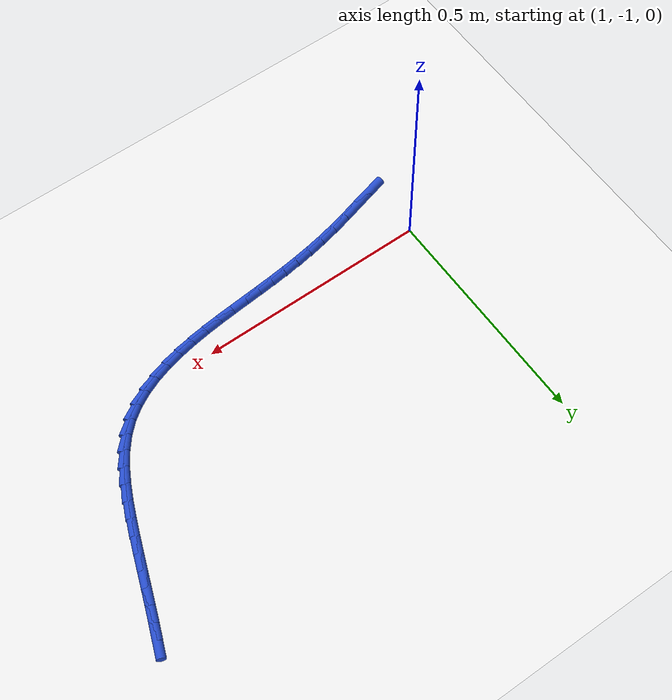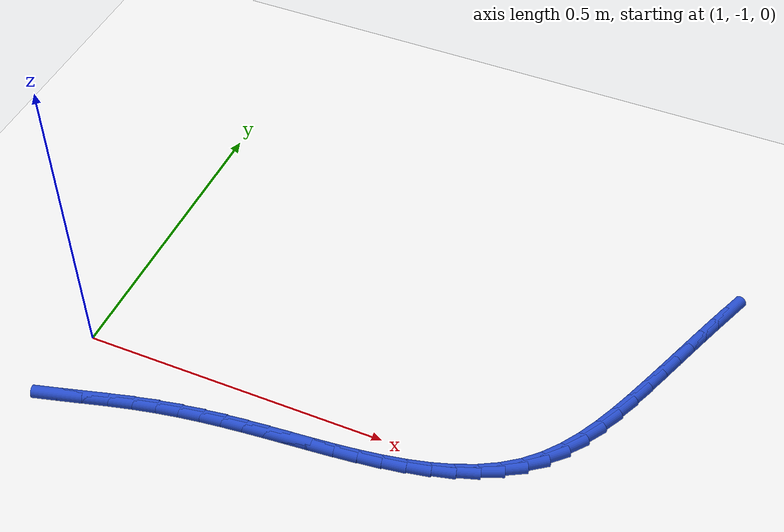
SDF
<sdf version="1.6">
 <world name="default">
  <model name="ground_plane">
   <static>1</static>
   <link name="link">
    <collision name="collision">
     <geometry><plane><normal>0 0 1</normal><size>100 100</size></plane></geometry>
     <surface><friction><ode><mu>100</mu><mu2>50</mu2></ode></friction></surface>
    </collision>
    <visual name="visual">
     <cast_shadows>0</cast_shadows>
     <geometry><plane><normal>0 0 1</normal><size>100 100</size></plane></geometry>
     <material>
      <script><uri>file://media/materials/scripts/gazebo.material</uri><name>Gazebo/WhiteGlow</name></script>
     </material>
    </visual>
   </link>
  </model>
  <model name="line">
   <link name="link_118">
    <pose>1.9072722049356385 -0.5615380536261032 0.01 0 1.57 1.1945652947559258</pose>
    <collision name="collision">
     <geometry><cylinder><radius>0.01</radius><length>0.08</length></cylinder></geometry>
    </collision>
    <visual name="visual">
     <material>
      <script><name>Gazebo/Blue</name><uri>file://media/materials/scripts/gazebo.material</uri></script>
     </material>
     <geometry><cylinder><radius>0.01</radius><length>0.08</length></cylinder></geometry>
    </visual>
   </link>
   <link name="link_119">
    <pose>1.8946620502462868 -0.5934585331819802 0.01 0 1.57 1.2041527923929434</pose>
    <collision name="collision">
     <geometry><cylinder><radius>0.01</radius><length>0.08</length></cylinder></geometry>
    </collision>
    <visual name="visual">
     <material>
      <script><name>Gazebo/Blue</name><uri>file://media/materials/scripts/gazebo.material</uri></script>
     </material>
     <geometry><cylinder><radius>0.01</radius><length>0.08</length></cylinder></geometry>
    </visual>
   </link>
   <link name="link_120">
    <pose>1.8823693876427026 -0.6254701116233897 0.01 0 1.57 1.209949274886723</pose>
    <collision name="collision">
     <geometry><cylinder><radius>0.01</radius><length>0.08</length></cylinder></geometry>
    </collision>
    <visual name="visual">
     <material>
      <script><name>Gazebo/Blue</name><uri>file://media/materials/scripts/gazebo.material</uri></script>
     </material>
     <geometry><cylinder><radius>0.01</radius><length>0.08</length></cylinder></geometry>
    </visual>
   </link>
   <link name="link_121">
    <pose>1.8702314227952408 -0.6576347185459426 0.01 0 1.57 1.2119248141530399</pose>
    <collision name="collision">
     <geometry><cylinder><radius>0.01</radius><length>0.08</length></cylinder></geometry>
    </collision>
    <visual name="visual">
     <material>
      <script><name>Gazebo/Blue</name><uri>file://media/materials/scripts/gazebo.material</uri></script>
     </material>
     <geometry><cylinder><radius>0.01</radius><length>0.08</length></cylinder></geometry>
    </visual>
   </link>
   <link name="link_122">
    <pose>1.858085361374259 -0.6900142835452499 0.01 0 1.57 1.2101267457551288</pose>
    <collision name="collision">
     <geometry><cylinder><radius>0.01</radius><length>0.08</length></cylinder></geometry>
    </collision>
    <visual name="visual">
     <material>
      <script><name>Gazebo/Blue</name><uri>file://media/materials/scripts/gazebo.material</uri></script>
     </material>
     <geometry><cylinder><radius>0.01</radius><length>0.08</length></cylinder></geometry>
    </visual>
   </link>
   <link name="link_123">
    <pose>1.845768409050113 -0.7226707362169221 0.01 0 1.57 1.204675052923725</pose>
    <collision name="collision">
     <geometry><cylinder><radius>0.01</radius><length>0.08</length></cylinder></geometry>
    </collision>
    <visual name="visual">
     <material>
      <script><name>Gazebo/Blue</name><uri>file://media/materials/scripts/gazebo.material</uri></script>
     </material>
     <geometry><cylinder><radius>0.01</radius><length>0.08</length></cylinder></geometry>
    </visual>
   </link>
   <link name="link_124">
    <pose>1.8331177714931597 -0.7556660061565704 0.01 0 1.57 1.1948804701572977</pose>
    <collision name="collision">
     <geometry><cylinder><radius>0.01</radius><length>0.08</length></cylinder></geometry>
    </collision>
    <visual name="visual">
     <material>
      <script><name>Gazebo/Blue</name><uri>file://media/materials/scripts/gazebo.material</uri></script>
     </material>
     <geometry><cylinder><radius>0.01</radius><length>0.08</length></cylinder></geometry>
    </visual>
   </link>
   <link name="link_125">
    <pose>1.8199553004847773 -0.7890153363406012 0.01 0 1.57 1.1728858050277255</pose>
    <collision name="collision">
     <geometry><cylinder><radius>0.01</radius><length>0.08</length></cylinder></geometry>
    </collision>
    <visual name="visual">
     <material>
      <script><name>Gazebo/Blue</name><uri>file://media/materials/scripts/gazebo.material</uri></script>
     </material>
     <geometry><cylinder><radius>0.01</radius><length>0.08</length></cylinder></geometry>
    </visual>
   </link>
   <link name="link_126">
    <pose>1.8059621249062885 -0.8223060731742263 0.01 0 1.57 1.133922118287796</pose>
    <collision name="collision">
     <geometry><cylinder><radius>0.01</radius><length>0.08</length></cylinder></geometry>
    </collision>
    <visual name="visual">
     <material>
      <script><name>Gazebo/Blue</name><uri>file://media/materials/scripts/gazebo.material</uri></script>
     </material>
     <geometry><cylinder><radius>0.01</radius><length>0.08</length></cylinder></geometry>
    </visual>
   </link>
   <link name="link_127">
    <pose>1.790743798267574 -0.8548957607895823 0.01 0 1.57 1.076483699218256</pose>
    <collision name="collision">
     <geometry><cylinder><radius>0.01</radius><length>0.08</length></cylinder></geometry>
    </collision>
    <visual name="visual">
     <material>
      <script><name>Gazebo/Blue</name><uri>file://media/materials/scripts/gazebo.material</uri></script>
     </material>
     <geometry><cylinder><radius>0.01</radius><length>0.08</length></cylinder></geometry>
    </visual>
   </link>
   <link name="link_128">
    <pose>1.7739051501890448 -0.8861397421857777 0.01 0 1.57 0.998292841311511</pose>
    <collision name="collision">
     <geometry><cylinder><radius>0.01</radius><length>0.08</length></cylinder></geometry>
    </collision>
    <visual name="visual">
     <material>
      <script><name>Gazebo/Blue</name><uri>file://media/materials/scripts/gazebo.material</uri></script>
     </material>
     <geometry><cylinder><radius>0.01</radius><length>0.08</length></cylinder></geometry>
    </visual>
   </link>
   <link name="link_129">
    <pose>1.7550510102911079 -0.9153933603619204 0.01 0 1.57 0.8967447258366091</pose>
    <collision name="collision">
     <geometry><cylinder><radius>0.01</radius><length>0.08</length></cylinder></geometry>
    </collision>
    <visual name="visual">
     <material>
      <script><name>Gazebo/Blue</name><uri>file://media/materials/scripts/gazebo.material</uri></script>
     </material>
     <geometry><cylinder><radius>0.01</radius><length>0.08</length></cylinder></geometry>
    </visual>
   </link>
   <link name="link_130">
    <pose>1.7337862081941735 -0.942011958317119 0.01 0 1.57 0.7700958047525768</pose>
    <collision name="collision">
     <geometry><cylinder><radius>0.01</radius><length>0.08</length></cylinder></geometry>
    </collision>
    <visual name="visual">
     <material>
      <script><name>Gazebo/Blue</name><uri>file://media/materials/scripts/gazebo.material</uri></script>
     </material>
     <geometry><cylinder><radius>0.01</radius><length>0.08</length></cylinder></geometry>
    </visual>
   </link>
   <link name="link_131">
    <pose>1.7097183057364775 -0.9653543153480236 0.01 0 1.57 0.6317520037540836</pose>
    <collision name="collision">
     <geometry><cylinder><radius>0.01</radius><length>0.08</length></cylinder></geometry>
    </collision>
    <visual name="visual">
     <material>
      <script><name>Gazebo/Blue</name><uri>file://media/materials/scripts/gazebo.material</uri></script>
     </material>
     <geometry><cylinder><radius>0.01</radius><length>0.08</length></cylinder></geometry>
    </visual>
   </link>
   <link name="link_132">
    <pose>1.6827195210678725 -0.9851120677527586 0.01 0 1.57 0.5081305437938447</pose>
    <collision name="collision">
     <geometry><cylinder><radius>0.01</radius><length>0.08</length></cylinder></geometry>
    </collision>
    <visual name="visual">
     <material>
      <script><name>Gazebo/Blue</name><uri>file://media/materials/scripts/gazebo.material</uri></script>
     </material>
     <geometry><cylinder><radius>0.01</radius><length>0.08</length></cylinder></geometry>
    </visual>
   </link>
   <link name="link_133">
    <pose>1.6531439501516036 -1.0015829072945959 0.01 0 1.57 0.4032943228519852</pose>
    <collision name="collision">
     <geometry><cylinder><radius>0.01</radius><length>0.08</length></cylinder></geometry>
    </collision>
    <visual name="visual">
     <material>
      <script><name>Gazebo/Blue</name><uri>file://media/materials/scripts/gazebo.material</uri></script>
     </material>
     <geometry><cylinder><radius>0.01</radius><length>0.08</length></cylinder></geometry>
    </visual>
   </link>
   <link name="link_134">
    <pose>1.6213968190268933 -1.0151288317934855 0.01 0 1.57 0.3166893866885432</pose>
    <collision name="collision">
     <geometry><cylinder><radius>0.01</radius><length>0.08</length></cylinder></geometry>
    </collision>
    <visual name="visual">
     <material>
      <script><name>Gazebo/Blue</name><uri>file://media/materials/scripts/gazebo.material</uri></script>
     </material>
     <geometry><cylinder><radius>0.01</radius><length>0.08</length></cylinder></geometry>
    </visual>
   </link>
   <link name="link_135">
    <pose>1.5878833537329646 -1.0261118390693775 0.01 0 1.57 0.24669013579089433</pose>
    <collision name="collision">
     <geometry><cylinder><radius>0.01</radius><length>0.08</length></cylinder></geometry>
    </collision>
    <visual name="visual">
     <material>
      <script><name>Gazebo/Blue</name><uri>file://media/materials/scripts/gazebo.material</uri></script>
     </material>
     <geometry><cylinder><radius>0.01</radius><length>0.08</length></cylinder></geometry>
    </visual>
   </link>
   <link name="link_136">
    <pose>1.5530087803090382 -1.0348939269422217 0.01 0 1.57 0.19140610242808892</pose>
    <collision name="collision">
     <geometry><cylinder><radius>0.01</radius><length>0.08</length></cylinder></geometry>
    </collision>
    <visual name="visual">
     <material>
      <script><name>Gazebo/Blue</name><uri>file://media/materials/scripts/gazebo.material</uri></script>
     </material>
     <geometry><cylinder><radius>0.01</radius><length>0.08</length></cylinder></geometry>
    </visual>
   </link>
   <link name="link_137">
    <pose>1.517178324794338 -1.0418370932319685 0.01 0 1.57 0.1491339136260993</pose>
    <collision name="collision">
     <geometry><cylinder><radius>0.01</radius><length>0.08</length></cylinder></geometry>
    </collision>
    <visual name="visual">
     <material>
      <script><name>Gazebo/Blue</name><uri>file://media/materials/scripts/gazebo.material</uri></script>
     </material>
     <geometry><cylinder><radius>0.01</radius><length>0.08</length></cylinder></geometry>
    </visual>
   </link>
   <link name="link_138">
    <pose>1.4807972132280856 -1.047303335758567 0.01 0 1.57 0.1185687501271505</pose>
    <collision name="collision">
     <geometry><cylinder><radius>0.01</radius><length>0.08</length></cylinder></geometry>
    </collision>
    <visual name="visual">
     <material>
      <script><name>Gazebo/Blue</name><uri>file://media/materials/scripts/gazebo.material</uri></script>
     </material>
     <geometry><cylinder><radius>0.01</radius><length>0.08</length></cylinder></geometry>
    </visual>
   </link>
   <link name="link_139">
    <pose>1.4442706716495033 -1.0516546523419683 0.01 0 1.57 0.09889636946620939</pose>
    <collision name="collision">
     <geometry><cylinder><radius>0.01</radius><length>0.08</length></cylinder></geometry>
    </collision>
    <visual name="visual">
     <material>
      <script><name>Gazebo/Blue</name><uri>file://media/materials/scripts/gazebo.material</uri></script>
     </material>
     <geometry><cylinder><radius>0.01</radius><length>0.08</length></cylinder></geometry>
    </visual>
   </link>
   <link name="link_140">
    <pose>1.4080039260978137 -1.0552530408021215 0.01 0 1.57 0.08984890861234189</pose>
    <collision name="collision">
     <geometry><cylinder><radius>0.01</radius><length>0.08</length></cylinder></geometry>
    </collision>
    <visual name="visual">
     <material>
      <script><name>Gazebo/Blue</name><uri>file://media/materials/scripts/gazebo.material</uri></script>
     </material>
     <geometry><cylinder><radius>0.01</radius><length>0.08</length></cylinder></geometry>
    </visual>
   </link>
   <link name="link_141">
    <pose>1.3724020174858127 -1.0584604690879982 0.01 0 1.57 0.09054428877806898</pose>
    <collision name="collision">
     <geometry><cylinder><radius>0.01</radius><length>0.08</length></cylinder></geometry>
    </collision>
    <visual name="visual">
     <material>
      <script><name>Gazebo/Blue</name><uri>file://media/materials/scripts/gazebo.material</uri></script>
     </material>
     <geometry><cylinder><radius>0.01</radius><length>0.08</length></cylinder></geometry>
    </visual>
   </link>
   <link name="link_142">
    <pose>1.3376987162763474 -1.0616112698939952 0.01 0 1.57 0.09803466575835429</pose>
    <collision name="collision">
     <geometry><cylinder><radius>0.01</radius><length>0.08</length></cylinder></geometry>
    </collision>
    <visual name="visual">
     <material>
      <script><name>Gazebo/Blue</name><uri>file://media/materials/scripts/gazebo.material</uri></script>
     </material>
     <geometry><cylinder><radius>0.01</radius><length>0.08</length></cylinder></geometry>
    </visual>
   </link>
   <link name="link_143">
    <pose>1.3036395160265273 -1.0649609902477613 0.01 0 1.57 0.11181492803946352</pose>
    <collision name="collision">
     <geometry><cylinder><radius>0.01</radius><length>0.08</length></cylinder></geometry>
    </collision>
    <visual name="visual">
     <material>
      <script><name>Gazebo/Blue</name><uri>file://media/materials/scripts/gazebo.material</uri></script>
     </material>
     <geometry><cylinder><radius>0.01</radius><length>0.08</length></cylinder></geometry>
    </visual>
   </link>
   <link name="link_144">
    <pose>1.269883468385149 -1.0687512293876864 0.01 0 1.57 0.1315777475931809</pose>
    <collision name="collision">
     <geometry><cylinder><radius>0.01</radius><length>0.08</length></cylinder></geometry>
    </collision>
    <visual name="visual">
     <material>
      <script><name>Gazebo/Blue</name><uri>file://media/materials/scripts/gazebo.material</uri></script>
     </material>
     <geometry><cylinder><radius>0.01</radius><length>0.08</length></cylinder></geometry>
    </visual>
   </link>
   <link name="link_145">
    <pose>1.2360896250010094 -1.0732235865521607 0.01 0 1.57 0.15661337519621166</pose>
    <collision name="collision">
     <geometry><cylinder><radius>0.01</radius><length>0.08</length></cylinder></geometry>
    </collision>
    <visual name="visual">
     <material>
      <script><name>Gazebo/Blue</name><uri>file://media/materials/scripts/gazebo.material</uri></script>
     </material>
     <geometry><cylinder><radius>0.01</radius><length>0.08</length></cylinder></geometry>
    </visual>
   </link>
   <link name="link_146">
    <pose>1.2019170375229045 -1.078619660979574 0.01 0 1.57 0.1858763857305651</pose>
    <collision name="collision">
     <geometry><cylinder><radius>0.01</radius><length>0.08</length></cylinder></geometry>
    </collision>
    <visual name="visual">
     <material>
      <script><name>Gazebo/Blue</name><uri>file://media/materials/scripts/gazebo.material</uri></script>
     </material>
     <geometry><cylinder><radius>0.01</radius><length>0.08</length></cylinder></geometry>
    </visual>
   </link>
   <link name="link_147">
    <pose>1.1670247575996313 -1.0851810519083165 0.01 0 1.57 0.21810613543857157</pose>
    <collision name="collision">
     <geometry><cylinder><radius>0.01</radius><length>0.08</length></cylinder></geometry>
    </collision>
    <visual name="visual">
     <material>
      <script><name>Gazebo/Blue</name><uri>file://media/materials/scripts/gazebo.material</uri></script>
     </material>
     <geometry><cylinder><radius>0.01</radius><length>0.08</length></cylinder></geometry>
    </visual>
   </link>
   <link name="link_148">
    <pose>1.131071836879986 -1.0931493585767784 0.01 0 1.57 0.2496438726377906</pose>
    <collision name="collision">
     <geometry><cylinder><radius>0.01</radius><length>0.08</length></cylinder></geometry>
    </collision>
    <visual name="visual">
     <material>
      <script><name>Gazebo/Blue</name><uri>file://media/materials/scripts/gazebo.material</uri></script>
     </material>
     <geometry><cylinder><radius>0.01</radius><length>0.08</length></cylinder></geometry>
    </visual>
   </link>
   <link name="link_149">
    <pose>1.093819513222142 -1.1026473082082848 0.01 0 1.57 0.2688782314558283</pose>
    <collision name="collision">
     <geometry><cylinder><radius>0.01</radius><length>0.08</length></cylinder></geometry>
    </collision>
    <visual name="visual">
     <material>
      <script><name>Gazebo/Blue</name><uri>file://media/materials/scripts/gazebo.material</uri></script>
     </material>
     <geometry><cylinder><radius>0.01</radius><length>0.08</length></cylinder></geometry>
    </visual>
   </link>
   <link name="link_150">
    <pose>1.055548962972446 -1.113192789700367 0.01 0 1.57 0.2740366618895602</pose>
    <collision name="collision">
     <geometry><cylinder><radius>0.01</radius><length>0.08</length></cylinder></geometry>
    </collision>
    <visual name="visual">
     <material>
      <script><name>Gazebo/Blue</name><uri>file://media/materials/scripts/gazebo.material</uri></script>
     </material>
     <geometry><cylinder><radius>0.01</radius><length>0.08</length></cylinder></geometry>
    </visual>
   </link>
   <link name="link_151">
    <pose>1.016706317300193 -1.1241118019458456 0.01 0 1.57 0.26602941566272176</pose>
    <collision name="collision">
     <geometry><cylinder><radius>0.01</radius><length>0.08</length></cylinder></geometry>
    </collision>
    <visual name="visual">
     <material>
      <script><name>Gazebo/Blue</name><uri>file://media/materials/scripts/gazebo.material</uri></script>
     </material>
     <geometry><cylinder><radius>0.01</radius><length>0.08</length></cylinder></geometry>
    </visual>
   </link>
  </model>
 </world>
</sdf>
